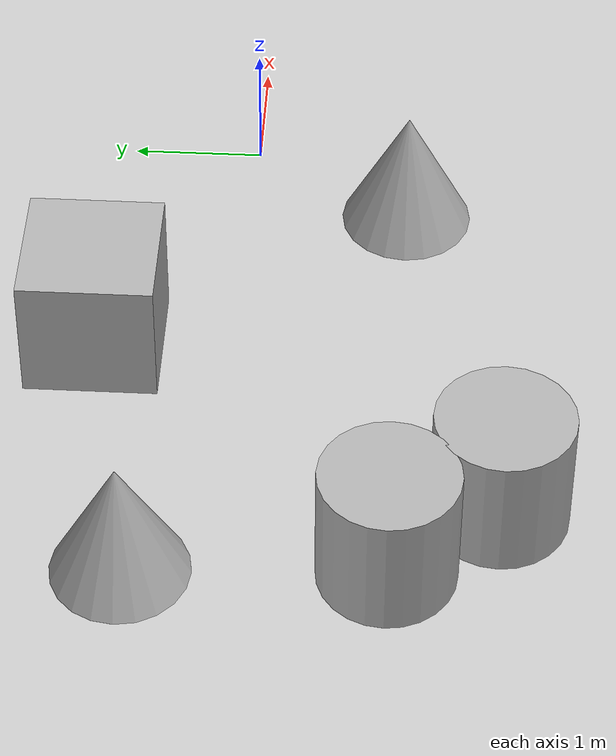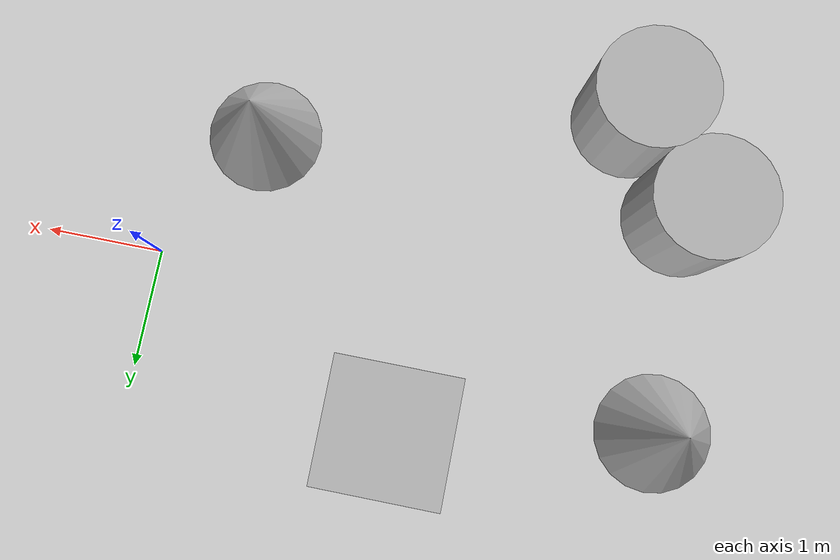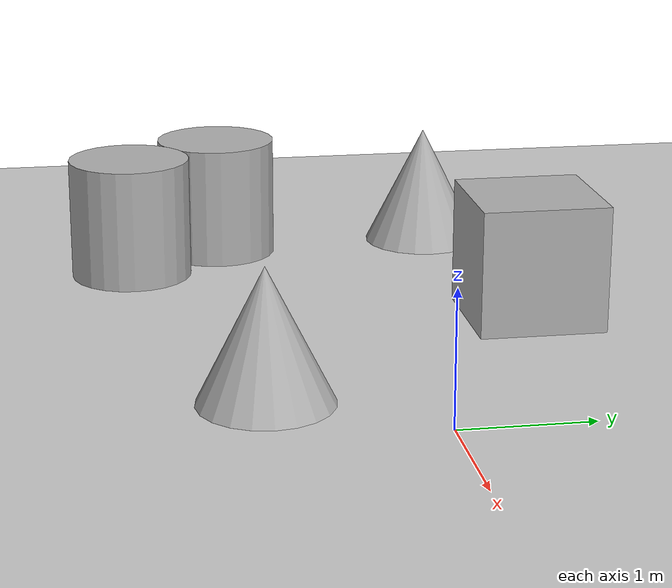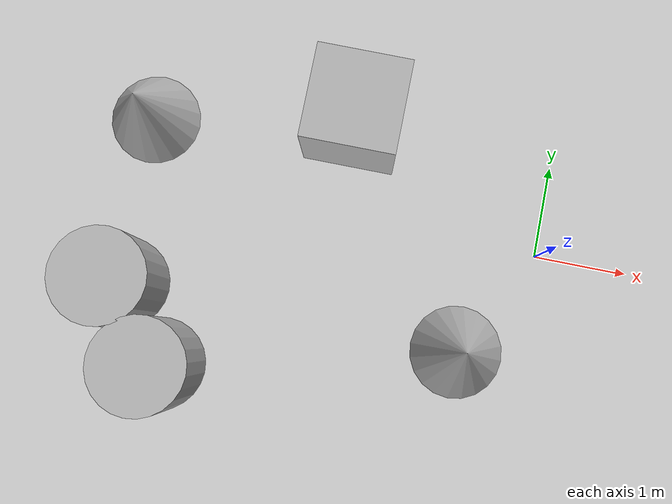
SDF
<sdf version='1.10'>
  <world name='empty'>
    <physics name='1ms' type='ignored'>
      <max_step_size>0.001</max_step_size>
      <real_time_factor>1</real_time_factor>
      <real_time_update_rate>1000</real_time_update_rate>
    </physics>
    <plugin name='gz::sim::systems::Physics' filename='gz-sim-physics-system'/>
    <plugin name='gz::sim::systems::UserCommands' filename='gz-sim-user-commands-system'/>
    <plugin name='gz::sim::systems::SceneBroadcaster' filename='gz-sim-scene-broadcaster-system'/>
    <plugin name='gz::sim::systems::Contact' filename='gz-sim-contact-system'/>
    <plugin name="gz::sim::systems::Sensors" filename="gz-sim-sensors-system"/>

    <gravity>0 0 -9.8000000000000007</gravity>
    <magnetic_field>5.5644999999999998e-06 2.2875799999999999e-05 -4.2388400000000002e-05</magnetic_field>
    <atmosphere type='adiabatic'/>
    <scene>
      <ambient>0.400000006 0.400000006 0.400000006 1</ambient>
      <background>0.699999988 0.699999988 0.699999988 1</background>
      <shadows>true</shadows>
    </scene>
    <model name='ground_plane'>
      <static>true</static>
      <link name='link'>
        <collision name='collision'>
          <geometry>
            <plane>
              <normal>0 0 1</normal>
              <size>100 100</size>
            </plane>
          </geometry>
          <surface>
            <friction>
              <ode/>
            </friction>
            <bounce/>
            <contact/>
          </surface>
        </collision>
        <visual name='visual'>
          <geometry>
            <plane>
              <normal>0 0 1</normal>
              <size>100 100</size>
            </plane>
          </geometry>
          <material>
            <ambient>0.800000012 0.800000012 0.800000012 1</ambient>
            <diffuse>0.800000012 0.800000012 0.800000012 1</diffuse>
            <specular>0.800000012 0.800000012 0.800000012 1</specular>
          </material>
        </visual>
        <pose>0 0 0 0 0 0</pose>
        <inertial>
          <pose>0 0 0 0 0 0</pose>
          <mass>1</mass>
          <inertia>
            <ixx>1</ixx>
            <ixy>0</ixy>
            <ixz>0</ixz>
            <iyy>1</iyy>
            <iyz>0</iyz>
            <izz>1</izz>
          </inertia>
        </inertial>
        <enable_wind>false</enable_wind>
      </link>
      <pose>0 0 0 0 0 0</pose>
      <self_collide>false</self_collide>
    </model>
    <model name='cone'>
      <pose>-0.66958616272726523 -1.1898001375875857 0.49999999993296756 5.2543141933792029e-17 -7.7132841034784673e-10 -2.4460904633187731e-23</pose>
      <link name='cone_link'>
        <inertial>
          <inertia>
            <ixx>0.074999999999999997</ixx>
            <ixy>0</ixy>
            <ixz>0</ixz>
            <iyy>0.074999999999999997</iyy>
            <iyz>0</iyz>
            <izz>0.074999999999999997</izz>
          </inertia>
          <mass>1</mass>
          <pose>0 0 0 0 0 0</pose>
        </inertial>
        <collision name='cone_collision'>
          <geometry>
            <cone>
              <radius>0.5</radius>
              <length>1</length>
            </cone>
          </geometry>
          <surface>
            <friction>
              <ode/>
            </friction>
            <bounce/>
            <contact/>
          </surface>
        </collision>
        <visual name='cone_visual'>
          <geometry>
            <cone>
              <radius>0.5</radius>
              <length>1</length>
            </cone>
          </geometry>
          <material>
            <ambient>0.300000012 0.300000012 0.300000012 1</ambient>
            <diffuse>0.699999988 0.699999988 0.699999988 1</diffuse>
            <specular>1 1 1 1</specular>
          </material>
        </visual>
        <pose>0 0 0 0 0 0</pose>
        <enable_wind>false</enable_wind>
      </link>
      <static>false</static>
      <self_collide>false</self_collide>
    </model>
    <model name='box'>
      <pose>-2.2195443047149555 1.0969730571927088 0.49999999990199806 6.2287739151293738e-22 9.3279666454713669e-22 -3.6315533669320137e-22</pose>
      <link name='box_link'>
        <inertial>
          <inertia>
            <ixx>0.16666</ixx>
            <ixy>0</ixy>
            <ixz>0</ixz>
            <iyy>0.16666</iyy>
            <iyz>0</iyz>
            <izz>0.16666</izz>
          </inertia>
          <mass>1</mass>
          <pose>0 0 0 0 0 0</pose>
        </inertial>
        <collision name='box_collision'>
          <geometry>
            <box>
              <size>1 1 1</size>
            </box>
          </geometry>
          <surface>
            <friction>
              <ode/>
            </friction>
            <bounce/>
            <contact/>
          </surface>
        </collision>
        <visual name='box_visual'>
          <geometry>
            <box>
              <size>1 1 1</size>
            </box>
          </geometry>
          <material>
            <ambient>0.300000012 0.300000012 0.300000012 1</ambient>
            <diffuse>0.699999988 0.699999988 0.699999988 1</diffuse>
            <specular>1 1 1 1</specular>
          </material>
        </visual>
        <pose>0 0 0 0 0 0</pose>
        <enable_wind>false</enable_wind>
      </link>
      <static>false</static>
      <self_collide>false</self_collide>
    </model>
    <model name='cylinder'>
      <pose>-3.7895955157851144 -1.9335627406869005 0.50000007181284212 2.1429507081333886e-06 1.2616088667954496e-06 -0.0063731749169556387</pose>
      <link name='cylinder_link'>
        <inertial>
          <inertia>
            <ixx>0.14580000000000001</ixx>
            <ixy>0</ixy>
            <ixz>0</ixz>
            <iyy>0.14580000000000001</iyy>
            <iyz>0</iyz>
            <izz>0.125</izz>
          </inertia>
          <mass>1</mass>
          <pose>0 0 0 0 0 0</pose>
        </inertial>
        <collision name='cylinder_collision'>
          <geometry>
            <cylinder>
              <radius>0.5</radius>
              <length>1</length>
            </cylinder>
          </geometry>
          <surface>
            <friction>
              <ode/>
            </friction>
            <bounce/>
            <contact/>
          </surface>
        </collision>
        <visual name='cylinder_visual'>
          <geometry>
            <cylinder>
              <radius>0.5</radius>
              <length>1</length>
            </cylinder>
          </geometry>
          <material>
            <ambient>0.300000012 0.300000012 0.300000012 1</ambient>
            <diffuse>0.699999988 0.699999988 0.699999988 1</diffuse>
            <specular>1 1 1 1</specular>
          </material>
        </visual>
        <pose>0 0 0 0 0 0</pose>
        <enable_wind>false</enable_wind>
      </link>
      <static>false</static>
      <self_collide>false</self_collide>
    </model>
    <model name='cylinder_0'>
      <pose>-4.364914168271202 -1.1528898367869891 0.49999998932259565 -1.8484961338209075e-06 -8.4401749546598081e-07 -0.005238265354163248</pose>
      <link name='cylinder_link'>
        <inertial>
          <inertia>
            <ixx>0.14580000000000001</ixx>
            <ixy>0</ixy>
            <ixz>0</ixz>
            <iyy>0.14580000000000001</iyy>
            <iyz>0</iyz>
            <izz>0.125</izz>
          </inertia>
          <mass>1</mass>
          <pose>0 0 0 0 0 0</pose>
        </inertial>
        <collision name='cylinder_collision'>
          <geometry>
            <cylinder>
              <radius>0.5</radius>
              <length>1</length>
            </cylinder>
          </geometry>
          <surface>
            <friction>
              <ode/>
            </friction>
            <bounce/>
            <contact/>
          </surface>
        </collision>
        <visual name='cylinder_visual'>
          <geometry>
            <cylinder>
              <radius>0.5</radius>
              <length>1</length>
            </cylinder>
          </geometry>
          <material>
            <ambient>0.300000012 0.300000012 0.300000012 1</ambient>
            <diffuse>0.699999988 0.699999988 0.699999988 1</diffuse>
            <specular>1 1 1 1</specular>
          </material>
        </visual>
        <pose>0 0 0 0 0 0</pose>
        <enable_wind>false</enable_wind>
      </link>
      <static>false</static>
      <self_collide>false</self_collide>
    </model>
    <model name='cone_0'>
      <pose>-4.4349018898236894 0.70160792166880781 0.49999999993296756 5.254931119316858e-17 -7.7132841033999823e-10 6.969765996526587e-23</pose>
      <link name='cone_link'>
        <inertial>
          <inertia>
            <ixx>0.074999999999999997</ixx>
            <ixy>0</ixy>
            <ixz>0</ixz>
            <iyy>0.074999999999999997</iyy>
            <iyz>0</iyz>
            <izz>0.074999999999999997</izz>
          </inertia>
          <mass>1</mass>
          <pose>0 0 0 0 0 0</pose>
        </inertial>
        <collision name='cone_collision'>
          <geometry>
            <cone>
              <radius>0.5</radius>
              <length>1</length>
            </cone>
          </geometry>
          <surface>
            <friction>
              <ode/>
            </friction>
            <bounce/>
            <contact/>
          </surface>
        </collision>
        <visual name='cone_visual'>
          <geometry>
            <cone>
              <radius>0.5</radius>
              <length>1</length>
            </cone>
          </geometry>
          <material>
            <ambient>0.300000012 0.300000012 0.300000012 1</ambient>
            <diffuse>0.699999988 0.699999988 0.699999988 1</diffuse>
            <specular>1 1 1 1</specular>
          </material>
        </visual>
        <pose>0 0 0 0 0 0</pose>
        <enable_wind>false</enable_wind>
      </link>
      <static>false</static>
      <self_collide>false</self_collide>
    </model>
    <light name='sun' type='directional'>
      <pose>0 0 10 0 0 0</pose>
      <cast_shadows>true</cast_shadows>
      <intensity>1</intensity>
      <direction>-0.5 0.10000000000000001 -0.90000000000000002</direction>
      <diffuse>0.800000012 0.800000012 0.800000012 1</diffuse>
      <specular>0.200000003 0.200000003 0.200000003 1</specular>
      <attenuation>
        <range>1000</range>
        <linear>0.01</linear>
        <constant>0.90000000000000002</constant>
        <quadratic>0.001</quadratic>
      </attenuation>
      <spot>
        <inner_angle>0</inner_angle>
        <outer_angle>0</outer_angle>
        <falloff>0</falloff>
      </spot>
    </light>
  </world>
</sdf>
